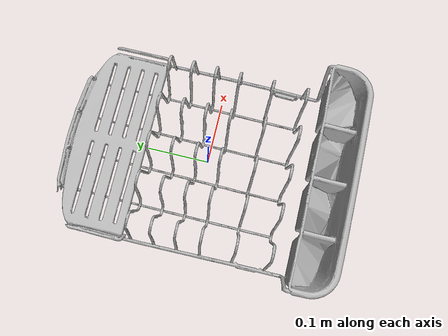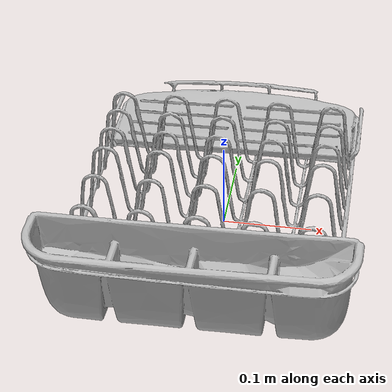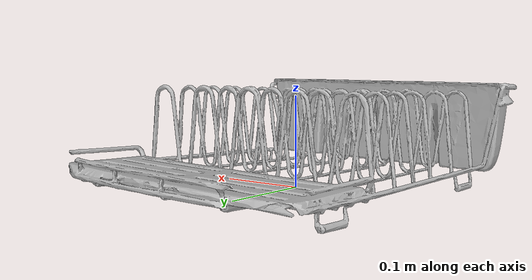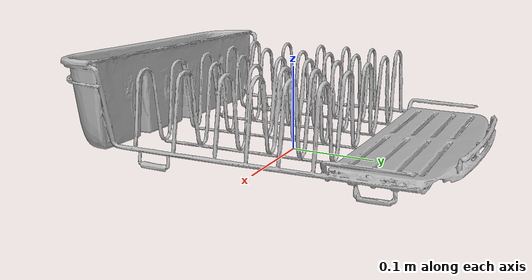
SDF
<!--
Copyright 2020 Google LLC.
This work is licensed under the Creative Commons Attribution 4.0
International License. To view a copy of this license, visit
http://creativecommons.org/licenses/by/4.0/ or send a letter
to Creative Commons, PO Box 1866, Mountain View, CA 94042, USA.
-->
<?xml version="1.0" ?>
<sdf version="1.6">
    <model name="Craftsman_Grip_Screwdriver_Phillips_Cushion">
        <link name="link_0">
            <visual name="visual">
                <geometry>
                    <mesh>
                        <uri>meshes/model.obj</uri>
                    </mesh>
                </geometry>
            </visual>
            <collision name="collision_0">
                <geometry>
                    <mesh>
                        <uri>meshes/model.obj</uri>
                    </mesh>
                </geometry>
            </collision>
        </link>
    </model>
</sdf>
